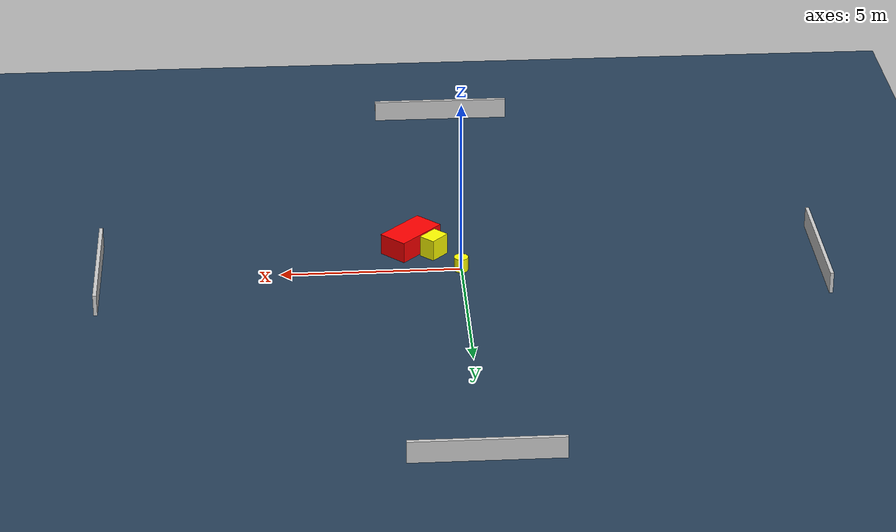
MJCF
<?xml version="1.0" ?>
<mujoco model="generated_environment">
  <option timestep="0.01" integrator="RK4" cone="elliptic"/>
  <default>
    <geom density="1"/>
  </default>
  <asset>
    <texture builtin="gradient" height="3072" name="skybox" rgb1="0.3 0.5 0.7" rgb2="0 0 0" type="skybox" width="512"/>
    <texture builtin="checker" height="300" name="groundplane" rgb1="0.2 0.3 0.4" rgb2="0.1 0.2 0.3" type="2d" width="300"/>
    <material name="groundplane" reflectance="0.2" texrepeat="5 5" texture="groundplane"/>
  </asset>
  <worldbody>
    <light dir="0 0 -1" directional="true" pos="0 0 1.5"/>
    <geom condim="3" friction="0.5 0.005 0.001" material="groundplane" name="floor" pos="0 0 0" size="0 0 0.05" type="plane"/>
    <body name="walls">
      <geom name="wall_1" condim="4" pos="-10.0 0.0 0.3" rgba="0.800000011920929 0.800000011920929 0.800000011920929 1.0" size="0.05 2.0 0.3" type="box"/>
      <geom name="wall_2" condim="4" pos="10.0 0.0 0.3" rgba="0.800000011920929 0.800000011920929 0.800000011920929 1.0" size="0.05 2.0 0.3" type="box"/>
      <geom name="wall_3" condim="4" pos="0.0 -10.0 0.3" rgba="0.800000011920929 0.800000011920929 0.800000011920929 1.0" size="2.0 0.05 0.3" type="box"/>
      <geom name="wall_4" condim="4" pos="0.0 10.0 0.3" rgba="0.800000011920929 0.800000011920929 0.800000011920929 1.0" size="2.0 0.05 0.3" type="box"/>
    </body>
    <body name="robot">
      <joint name="joint_x" type="slide" pos="0 0 0" axis="1 0 0"/>
      <joint name="joint_y" type="slide" pos="0 0 0" axis="0 1 0"/>
      <geom name="robot" type="cylinder" pos="0.0 0.0 0.2" size="0.2 0.2 0.0" mass="5.0" friction="1.0 0.005 0.0001" condim="4" rgba="1.0 1.0 0.0 1.0"/>
    </body>
    <body name="obstacle_1_movable">
      <geom name="obstacle_1_movable" condim="4" pos="0.7032584714797013 -0.9715851557714204 0.3" euler="0 0 46.71077443721189" friction="0.0 0.005 0.001" rgba="1.0 1.0 0.0 1.0" size="0.3103616855258288 0.24050652804955402 0.3" type="box" mass="0.1"/>
      <joint type="free"/>
    </body>
    <body name="obstacle_2_static">
      <geom name="obstacle_2_static" condim="4" pos="1.331049873364586 -1.363221428453054 0.3" euler="0 0 225.88731944444632" friction="0.0 0.005 0.001" rgba="1.0 0.0 0.0 1.0" size="0.7747009913781886 0.42937157143790516 0.3" type="box"/>
    </body>
  </worldbody>
  <actuator>
    <motor name="actuator_x" joint="joint_x" gear="1" ctrlrange="-1 1"/>
    <motor name="actuator_y" joint="joint_y" gear="1" ctrlrange="-1 1"/>
  </actuator>
</mujoco>
